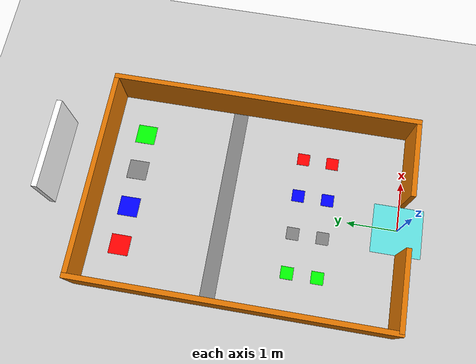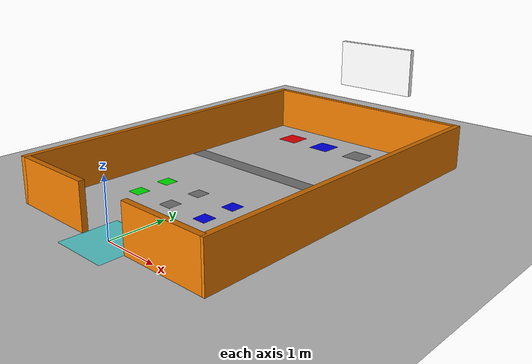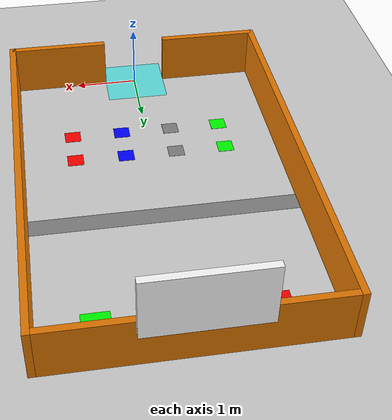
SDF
<?xml version="1.0" ?>
<sdf version="1.7">
  <world name="robocon_task_arena">
    <light type="directional" name="sun">
      <cast_shadows>true</cast_shadows>
      <pose>0 0 10 0 0 0</pose>
      <diffuse>0.8 0.8 0.8 1</diffuse>
      <specular>0.2 0.2 0.2 1</specular>
      <direction>-0.5 0.1 -0.9</direction>
    </light>

    <!-- 地面 -->
    <model name="ground_plane">
      <static>true</static>
      <link name="link">
        <collision name="collision">
          <geometry>
            <plane>
              <normal>0 0 1</normal>
              <size>100 100</size>
            </plane>
          </geometry>
        </collision>
        <visual name="visual">
          <geometry>
            <plane>
              <normal>0 0 1</normal>
              <size>100 100</size>
            </plane>
          </geometry>
          <material>
            <ambient>0.8 0.8 0.8 1</ambient>
            <diffuse>0.8 0.8 0.8 1</diffuse>
          </material>
        </visual>
      </link>
    </model>

    <!-- 围墙 - 整体上移3米，让启动区在原点 -->
    <model name="arena_walls">
      <static>true</static>
      <pose>0 0 0.4 0 0 0</pose>

      <!-- 后墙 (原 y=3.05 -> 现 y=6.05) -->
      <link name="wall_back">
        <pose>0 6.05 0 0 0 0</pose>
        <visual name="visual">
          <geometry><box><size>4.0 0.1 0.8</size></box></geometry>
          <material>
            <ambient>0.8745 0.4588 0 1</ambient>
            <diffuse>0.8745 0.4588 0 1</diffuse>
          </material>
        </visual>
        <collision name="collision">
          <geometry><box><size>4.0 0.1 0.8</size></box></geometry>
        </collision>
      </link>

      <!-- 前墙左段 (原 y=-3.05 -> 现 y=-0.05) -->
      <link name="wall_front_left">
        <pose>-1.275 -0.05 0 0 0 0</pose>
        <visual name="visual">
          <geometry><box><size>1.55 0.1 0.8</size></box></geometry>
          <material>
            <ambient>0.8745 0.4588 0 1</ambient>
            <diffuse>0.8745 0.4588 0 1</diffuse>
          </material>
        </visual>
        <collision name="collision">
          <geometry><box><size>1.55 0.1 0.8</size></box></geometry>
        </collision>
      </link>

      <!-- 前墙右段 (原 y=-3.05 -> 现 y=-0.05) -->
      <link name="wall_front_right">
        <pose>1.275 -0.05 0 0 0 0</pose>
        <visual name="visual">
          <geometry><box><size>1.55 0.1 0.8</size></box></geometry>
          <material>
            <ambient>0.8745 0.4588 0 1</ambient>
            <diffuse>0.8745 0.4588 0 1</diffuse>
          </material>
        </visual>
        <collision name="collision">
          <geometry><box><size>1.55 0.1 0.8</size></box></geometry>
        </collision>
      </link>

      <!-- 左墙 (原中心 y=0 -> 现中心 y=3.0，长度6.2米覆盖 -0.1 到 6.1) -->
      <link name="wall_left">
        <pose>-2.05 3.0 0 0 0 0</pose>
        <visual name="visual">
          <geometry><box><size>0.1 6.2 0.8</size></box></geometry>
          <material>
            <ambient>0.8745 0.4588 0 1</ambient>
            <diffuse>0.8745 0.4588 0 1</diffuse>
          </material>
        </visual>
        <collision name="collision">
          <geometry><box><size>0.1 6.2 0.8</size></box></geometry>
        </collision>
      </link>

      <!-- 右墙 (原中心 y=0 -> 现中心 y=3.0，长度6.2米覆盖 -0.1 到 6.1) -->
      <link name="wall_right">
        <pose>2.05 3.0 0 0 0 0</pose>
        <visual name="visual">
          <geometry><box><size>0.1 6.2 0.8</size></box></geometry>
          <material>
            <ambient>0.8745 0.4588 0 1</ambient>
            <diffuse>0.8745 0.4588 0 1</diffuse>
          </material>
        </visual>
        <collision name="collision">
          <geometry><box><size>0.1 6.2 0.8</size></box></geometry>
        </collision>
      </link>
    </model>

    <!-- 减速带 (原 y=0.5 -> 现 y=3.5) - 移除物理碰撞，只留视觉标记 -->
    <model name="speed_bump_marker">
      <static>true</static>
      <pose>0 3.5 0.001 0 0 0</pose>
      <link name="link">
        <visual name="visual">
          <geometry><box><size>4.0 0.3 0.001</size></box></geometry>
          <material>
            <ambient>0.5 0.5 0.5 1</ambient>
            <diffuse>0.5 0.5 0.5 1</diffuse>
          </material>
        </visual>
        <!-- 移除 collision 标签，没有物理碰撞 -->
      </link>
    </model>

    <!-- 归位区 (原 y=2.4 -> 现 y=5.4) -->
    <model name="return_zone_green_food">
      <static>true</static>
      <pose>1.2 5.4 0.001 0 0 0</pose>
      <link name="link">
        <visual name="visual">
          <geometry><box><size>0.4 0.4 0.002</size></box></geometry>
          <material>
            <ambient>0.0 1.0 0.0 1</ambient>
            <diffuse>0.0 1.0 0.0 1</diffuse>
          </material>
        </visual>
        <collision name="collision">
          <geometry><box><size>0.4 0.4 0.002</size></box></geometry>
        </collision>
      </link>
    </model>

    <model name="return_zone_gray_tools">
      <static>true</static>
      <pose>0.4 5.4 0.001 0 0 0</pose>
      <link name="link">
        <visual name="visual">
          <geometry><box><size>0.4 0.4 0.002</size></box></geometry>
          <material>
            <ambient>0.5 0.5 0.5 1</ambient>
            <diffuse>0.5 0.5 0.5 1</diffuse>
          </material>
        </visual>
        <collision name="collision">
          <geometry><box><size>0.4 0.4 0.002</size></box></geometry>
        </collision>
      </link>
    </model>

    <model name="return_zone_blue_instrument">
      <static>true</static>
      <pose>-0.4 5.4 0.001 0 0 0</pose>
      <link name="link">
        <visual name="visual">
          <geometry><box><size>0.4 0.4 0.002</size></box></geometry>
          <material>
            <ambient>0.0 0.0 1.0 1</ambient>
            <diffuse>0.0 0.0 1.0 1</diffuse>
          </material>
        </visual>
        <collision name="collision">
          <geometry><box><size>0.4 0.4 0.002</size></box></geometry>
        </collision>
      </link>
    </model>

    <model name="return_zone_red_medicine">
      <static>true</static>
      <pose>-1.2 5.4 0.001 0 0 0</pose>
      <link name="link">
        <visual name="visual">
          <geometry><box><size>0.4 0.4 0.002</size></box></geometry>
          <material>
            <ambient>1.0 0.0 0.0 1</ambient>
            <diffuse>1.0 0.0 0.0 1</diffuse>
          </material>
        </visual>
        <collision name="collision">
          <geometry><box><size>0.4 0.4 0.002</size></box></geometry>
        </collision>
      </link>
    </model>

    <!-- 启动区 - 现在在原点 (原 y=-3.0 -> 现 y=0) -->
    <model name="start_zone">
      <static>true</static>
      <pose>0 0 0.001 0 0 0</pose>
      <link name="link">
        <visual name="visual">
          <geometry><box><size>1.0 1.0 0.002</size></box></geometry>
          <material>
            <ambient>0.0 1.0 1.0 0.5</ambient>
            <diffuse>0.0 1.0 1.0 0.5</diffuse>
          </material>
        </visual>
        <collision name="collision">
          <geometry><box><size>1.0 1.0 0.002</size></box></geometry>
        </collision>
      </link>
    </model>

    <!-- 物资箱存放区 - 换成同色地板标记 (移除所有物资箱模型) -->
    <model name="supply_zones_colored">
      <static>true</static>

      <!-- 第一排 (近排 y=2.05) - 同色地板标记 -->
      <link name="supply_1_1_green">
        <pose>-1.2 2.05 0.001 0 0 0</pose>
        <visual name="visual">
          <geometry><box><size>0.25 0.25 0.002</size></box></geometry>
          <material>
            <ambient>0.0 1.0 0.0 1</ambient>
            <diffuse>0.0 1.0 0.0 1</diffuse>
          </material>
        </visual>
        <collision name="collision">
          <geometry><box><size>0.25 0.25 0.002</size></box></geometry>
        </collision>
      </link>

      <link name="supply_1_2_gray">
        <pose>-0.4 2.05 0.001 0 0 0</pose>
        <visual name="visual">
          <geometry><box><size>0.25 0.25 0.002</size></box></geometry>
          <material>
            <ambient>0.5 0.5 0.5 1</ambient>
            <diffuse>0.5 0.5 0.5 1</diffuse>
          </material>
        </visual>
        <collision name="collision">
          <geometry><box><size>0.25 0.25 0.002</size></box></geometry>
        </collision>
      </link>

      <link name="supply_1_3_blue">
        <pose>0.4 2.05 0.001 0 0 0</pose>
        <visual name="visual">
          <geometry><box><size>0.25 0.25 0.002</size></box></geometry>
          <material>
            <ambient>0.0 0.0 1.0 1</ambient>
            <diffuse>0.0 0.0 1.0 1</diffuse>
          </material>
        </visual>
        <collision name="collision">
          <geometry><box><size>0.25 0.25 0.002</size></box></geometry>
        </collision>
      </link>

      <link name="supply_1_4_red">
        <pose>1.2 2.05 0.001 0 0 0</pose>
        <visual name="visual">
          <geometry><box><size>0.25 0.25 0.002</size></box></geometry>
          <material>
            <ambient>1.0 0.0 0.0 1</ambient>
            <diffuse>1.0 0.0 0.0 1</diffuse>
          </material>
        </visual>
        <collision name="collision">
          <geometry><box><size>0.25 0.25 0.002</size></box></geometry>
        </collision>
      </link>

      <!-- 第二排 (远排 y=1.45) - 同色地板标记 -->
      <link name="supply_2_1_green">
        <pose>-1.2 1.45 0.001 0 0 0</pose>
        <visual name="visual">
          <geometry><box><size>0.25 0.25 0.002</size></box></geometry>
          <material>
            <ambient>0.0 1.0 0.0 1</ambient>
            <diffuse>0.0 1.0 0.0 1</diffuse>
          </material>
        </visual>
        <collision name="collision">
          <geometry><box><size>0.25 0.25 0.002</size></box></geometry>
        </collision>
      </link>

      <link name="supply_2_2_gray">
        <pose>-0.4 1.45 0.001 0 0 0</pose>
        <visual name="visual">
          <geometry><box><size>0.25 0.25 0.002</size></box></geometry>
          <material>
            <ambient>0.5 0.5 0.5 1</ambient>
            <diffuse>0.5 0.5 0.5 1</diffuse>
          </material>
        </visual>
        <collision name="collision">
          <geometry><box><size>0.25 0.25 0.002</size></box></geometry>
        </collision>
      </link>

      <link name="supply_2_3_blue">
        <pose>0.4 1.45 0.001 0 0 0</pose>
        <visual name="visual">
          <geometry><box><size>0.25 0.25 0.002</size></box></geometry>
          <material>
            <ambient>0.0 0.0 1.0 1</ambient>
            <diffuse>0.0 0.0 1.0 1</diffuse>
          </material>
        </visual>
        <collision name="collision">
          <geometry><box><size>0.25 0.25 0.002</size></box></geometry>
        </collision>
      </link>

      <link name="supply_2_4_red">
        <pose>1.2 1.45 0.001 0 0 0</pose>
        <visual name="visual">
          <geometry><box><size>0.25 0.25 0.002</size></box></geometry>
          <material>
            <ambient>1.0 0.0 0.0 1</ambient>
            <diffuse>1.0 0.0 0.0 1</diffuse>
          </material>
        </visual>
        <collision name="collision">
          <geometry><box><size>0.25 0.25 0.002</size></box></geometry>
        </collision>
      </link>
    </model>

    <!-- 移除所有物资箱模型 (food_box_1, tool_box_1, instrument_box_1, medicine_box_1,
         food_box_2, tool_box_2, instrument_box_2, medicine_box_2 全部删除) -->

    <!-- 智力题目显示区 (原 y=3.5 -> 现 y=6.5) -->
    <model name="display_area">
      <static>true</static>
      <pose>0 6.5 1.5 0 0 0</pose>
      <link name="link">
        <visual name="visual">
          <geometry><box><size>1.6 0.1 0.9</size></box></geometry>
          <material>
            <ambient>1.0 1.0 1.0 1</ambient>
            <diffuse>1.0 1.0 1.0 1</diffuse>
          </material>
        </visual>
      </link>
    </model>

  </world>
</sdf>
